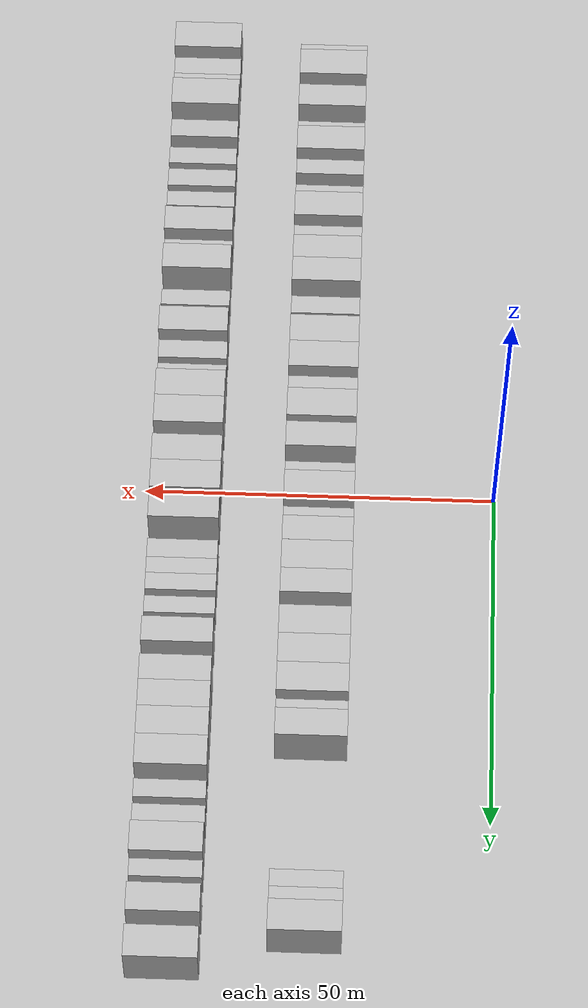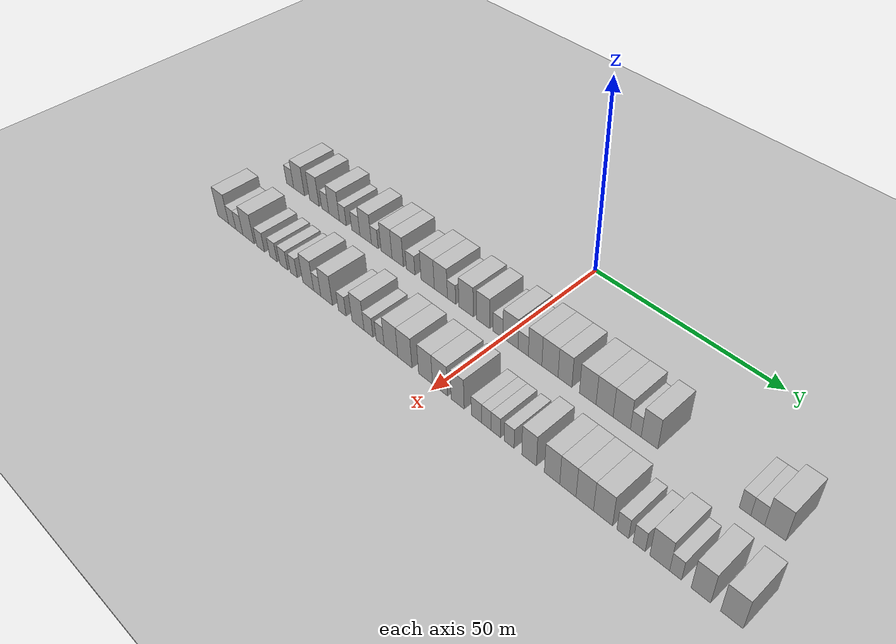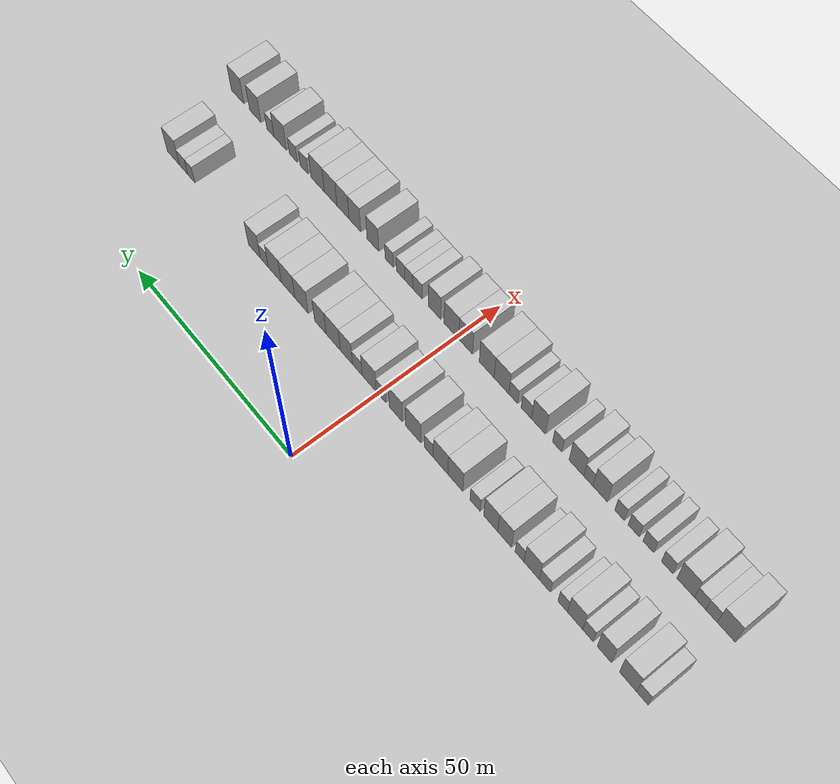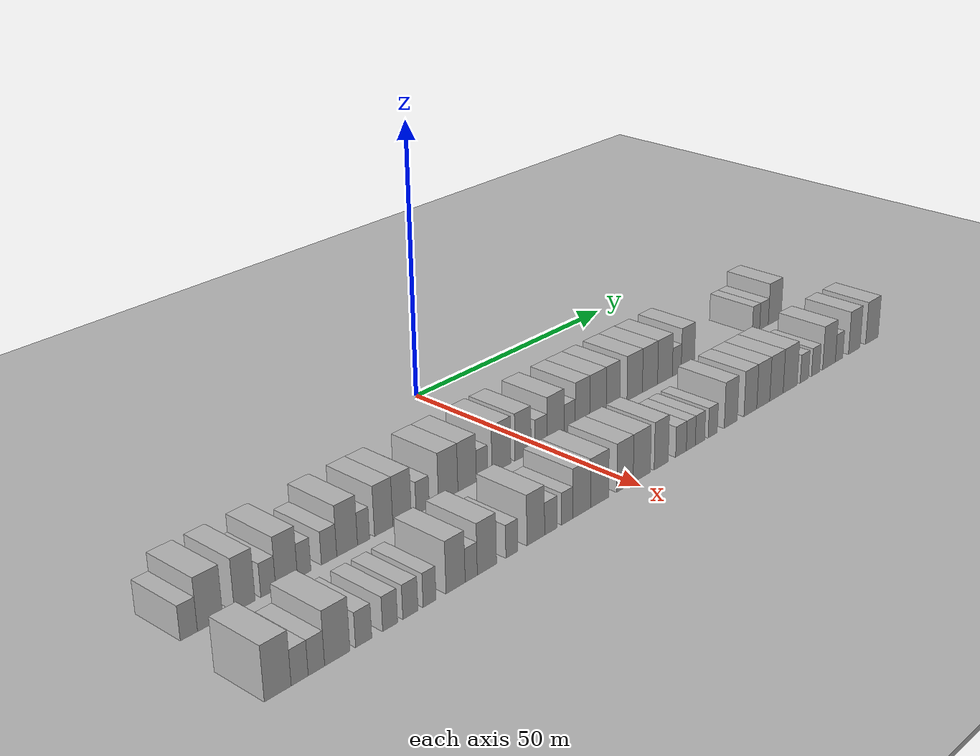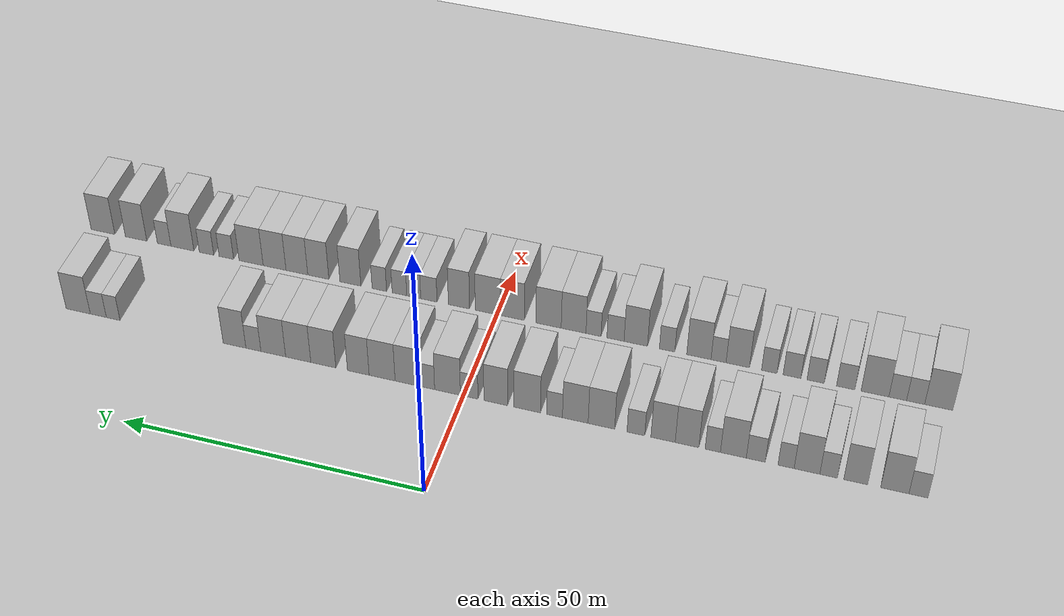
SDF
<sdf version="1.6">
 <world name="default">
  <include><name>ground_plane_1</name><uri>model://HANNAS_ground_plane</uri></include>
  <include>
   <name>ground_plane_2</name>
   <uri>model://HANNAS_ground_plane</uri>
   <pose>100 0 0  0 0 0</pose>
  </include>
  <model name="building_36">
   <static>1</static>
   <pose>25.0000 -72.7399 0 0.000000 0.000000 0.000000</pose>
   <link name="link">
    <pose>0 0 3.00 0 0 0</pose>
    <collision name="collision"><geometry><box><size>10.0000 2.8805 6.0000</size></box></geometry></collision>
    <visual name="visual">
     <cast_shadows>0</cast_shadows>
     <geometry><box><size>10.0000 2.8805 6.0000</size></box></geometry>
     <material>
      <script>
       <uri>model://HANNAS_wall/materials/scripts</uri>
       <uri>model://HANNAS_wall/materials/textures</uri>
       <name>vrc/HANNAS_wall</name>
      </script>
     </material>
    </visual>
   </link>
  </model>
  <model name="building_37">
   <static>1</static>
   <pose>25.0000 -69.1402 0 0.000000 0.000000 0.000000</pose>
   <link name="link">
    <pose>0 0 4.50 0 0 0</pose>
    <collision name="collision"><geometry><box><size>10.0000 4.3190 9.0000</size></box></geometry></collision>
    <visual name="visual">
     <cast_shadows>0</cast_shadows>
     <geometry><box><size>10.0000 4.3190 9.0000</size></box></geometry>
     <material>
      <script>
       <uri>model://HANNAS_wall/materials/scripts</uri>
       <uri>model://HANNAS_wall/materials/textures</uri>
       <name>vrc/HANNAS_wall</name>
      </script>
     </material>
    </visual>
   </link>
  </model>
  <model name="building_38">
   <static>1</static>
   <pose>25.0000 -63.1433 0 0.000000 0.000000 0.000000</pose>
   <link name="link">
    <pose>0 0 4.50 0 0 0</pose>
    <collision name="collision"><geometry><box><size>10.0000 3.6747 9.0000</size></box></geometry></collision>
    <visual name="visual">
     <cast_shadows>0</cast_shadows>
     <geometry><box><size>10.0000 3.6747 9.0000</size></box></geometry>
     <material>
      <script>
       <uri>model://HANNAS_wall/materials/scripts</uri>
       <uri>model://HANNAS_wall/materials/textures</uri>
       <name>vrc/HANNAS_wall</name>
      </script>
     </material>
    </visual>
   </link>
  </model>
  <model name="building_39">
   <static>1</static>
   <pose>25.0000 -58.9507 0 0.000000 0.000000 0.000000</pose>
   <link name="link">
    <pose>0 0 3.00 0 0 0</pose>
    <collision name="collision"><geometry><box><size>10.0000 2.7105 6.0000</size></box></geometry></collision>
    <visual name="visual">
     <cast_shadows>0</cast_shadows>
     <geometry><box><size>10.0000 2.7105 6.0000</size></box></geometry>
     <material>
      <script>
       <uri>model://HANNAS_wall/materials/scripts</uri>
       <uri>model://HANNAS_wall/materials/textures</uri>
       <name>vrc/HANNAS_wall</name>
      </script>
     </material>
    </visual>
   </link>
  </model>
  <model name="building_40">
   <static>1</static>
   <pose>25.0000 -55.5924 0 0.000000 0.000000 0.000000</pose>
   <link name="link">
    <pose>0 0 4.50 0 0 0</pose>
    <collision name="collision"><geometry><box><size>10.0000 4.0061 9.0000</size></box></geometry></collision>
    <visual name="visual">
     <cast_shadows>0</cast_shadows>
     <geometry><box><size>10.0000 4.0061 9.0000</size></box></geometry>
     <material>
      <script>
       <uri>model://HANNAS_wall/materials/scripts</uri>
       <uri>model://HANNAS_wall/materials/textures</uri>
       <name>vrc/HANNAS_wall</name>
      </script>
     </material>
    </visual>
   </link>
  </model>
  <model name="building_41">
   <static>1</static>
   <pose>25.0000 -52.3257 0 0.000000 0.000000 0.000000</pose>
   <link name="link">
    <pose>0 0 3.00 0 0 0</pose>
    <collision name="collision"><geometry><box><size>10.0000 2.5272 6.0000</size></box></geometry></collision>
    <visual name="visual">
     <cast_shadows>0</cast_shadows>
     <geometry><box><size>10.0000 2.5272 6.0000</size></box></geometry>
     <material>
      <script>
       <uri>model://HANNAS_wall/materials/scripts</uri>
       <uri>model://HANNAS_wall/materials/textures</uri>
       <name>vrc/HANNAS_wall</name>
      </script>
     </material>
    </visual>
   </link>
  </model>
  <model name="building_42">
   <static>1</static>
   <pose>25.0000 -47.5764 0 0.000000 0.000000 0.000000</pose>
   <link name="link">
    <pose>0 0 3.00 0 0 0</pose>
    <collision name="collision"><geometry><box><size>10.0000 2.9714 6.0000</size></box></geometry></collision>
    <visual name="visual">
     <cast_shadows>0</cast_shadows>
     <geometry><box><size>10.0000 2.9714 6.0000</size></box></geometry>
     <material>
      <script>
       <uri>model://HANNAS_wall/materials/scripts</uri>
       <uri>model://HANNAS_wall/materials/textures</uri>
       <name>vrc/HANNAS_wall</name>
      </script>
     </material>
    </visual>
   </link>
  </model>
  <model name="building_43">
   <static>1</static>
   <pose>25.0000 -44.0387 0 0.000000 0.000000 0.000000</pose>
   <link name="link">
    <pose>0 0 4.50 0 0 0</pose>
    <collision name="collision"><geometry><box><size>10.0000 4.1039 9.0000</size></box></geometry></collision>
    <visual name="visual">
     <cast_shadows>0</cast_shadows>
     <geometry><box><size>10.0000 4.1039 9.0000</size></box></geometry>
     <material>
      <script>
       <uri>model://HANNAS_wall/materials/scripts</uri>
       <uri>model://HANNAS_wall/materials/textures</uri>
       <name>vrc/HANNAS_wall</name>
      </script>
     </material>
    </visual>
   </link>
  </model>
  <model name="building_44">
   <static>1</static>
   <pose>25.0000 -40.7745 0 0.000000 0.000000 0.000000</pose>
   <link name="link">
    <pose>0 0 3.00 0 0 0</pose>
    <collision name="collision"><geometry><box><size>10.0000 2.4245 6.0000</size></box></geometry></collision>
    <visual name="visual">
     <cast_shadows>0</cast_shadows>
     <geometry><box><size>10.0000 2.4245 6.0000</size></box></geometry>
     <material>
      <script>
       <uri>model://HANNAS_wall/materials/scripts</uri>
       <uri>model://HANNAS_wall/materials/textures</uri>
       <name>vrc/HANNAS_wall</name>
      </script>
     </material>
    </visual>
   </link>
  </model>
  <model name="building_45">
   <static>1</static>
   <pose>25.0000 -36.6715 0 0.000000 0.000000 0.000000</pose>
   <link name="link">
    <pose>0 0 4.50 0 0 0</pose>
    <collision name="collision"><geometry><box><size>10.0000 3.7815 9.0000</size></box></geometry></collision>
    <visual name="visual">
     <cast_shadows>0</cast_shadows>
     <geometry><box><size>10.0000 3.7815 9.0000</size></box></geometry>
     <material>
      <script>
       <uri>model://HANNAS_wall/materials/scripts</uri>
       <uri>model://HANNAS_wall/materials/textures</uri>
       <name>vrc/HANNAS_wall</name>
      </script>
     </material>
    </visual>
   </link>
  </model>
  <model name="building_46">
   <static>1</static>
   <pose>25.0000 -32.8345 0 0.000000 0.000000 0.000000</pose>
   <link name="link">
    <pose>0 0 4.50 0 0 0</pose>
    <collision name="collision"><geometry><box><size>10.0000 3.8925 9.0000</size></box></geometry></collision>
    <visual name="visual">
     <cast_shadows>0</cast_shadows>
     <geometry><box><size>10.0000 3.8925 9.0000</size></box></geometry>
     <material>
      <script>
       <uri>model://HANNAS_wall/materials/scripts</uri>
       <uri>model://HANNAS_wall/materials/textures</uri>
       <name>vrc/HANNAS_wall</name>
      </script>
     </material>
    </visual>
   </link>
  </model>
  <model name="building_47">
   <static>1</static>
   <pose>25.0000 -28.4580 0 0.000000 0.000000 0.000000</pose>
   <link name="link">
    <pose>0 0 3.00 0 0 0</pose>
    <collision name="collision"><geometry><box><size>10.0000 2.8605 6.0000</size></box></geometry></collision>
    <visual name="visual">
     <cast_shadows>0</cast_shadows>
     <geometry><box><size>10.0000 2.8605 6.0000</size></box></geometry>
     <material>
      <script>
       <uri>model://HANNAS_wall/materials/scripts</uri>
       <uri>model://HANNAS_wall/materials/textures</uri>
       <name>vrc/HANNAS_wall</name>
      </script>
     </material>
    </visual>
   </link>
  </model>
  <model name="building_48">
   <static>1</static>
   <pose>25.0000 -22.8673 0 0.000000 0.000000 0.000000</pose>
   <link name="link">
    <pose>0 0 4.50 0 0 0</pose>
    <collision name="collision"><geometry><box><size>10.0000 4.3210 9.0000</size></box></geometry></collision>
    <visual name="visual">
     <cast_shadows>0</cast_shadows>
     <geometry><box><size>10.0000 4.3210 9.0000</size></box></geometry>
     <material>
      <script>
       <uri>model://HANNAS_wall/materials/scripts</uri>
       <uri>model://HANNAS_wall/materials/textures</uri>
       <name>vrc/HANNAS_wall</name>
      </script>
     </material>
    </visual>
   </link>
  </model>
  <model name="building_49">
   <static>1</static>
   <pose>25.0000 -18.6075 0 0.000000 0.000000 0.000000</pose>
   <link name="link">
    <pose>0 0 4.50 0 0 0</pose>
    <collision name="collision"><geometry><box><size>10.0000 4.1986 9.0000</size></box></geometry></collision>
    <visual name="visual">
     <cast_shadows>0</cast_shadows>
     <geometry><box><size>10.0000 4.1986 9.0000</size></box></geometry>
     <material>
      <script>
       <uri>model://HANNAS_wall/materials/scripts</uri>
       <uri>model://HANNAS_wall/materials/textures</uri>
       <name>vrc/HANNAS_wall</name>
      </script>
     </material>
    </visual>
   </link>
  </model>
  <model name="building_50">
   <static>1</static>
   <pose>25.0000 -15.2015 0 0.000000 0.000000 0.000000</pose>
   <link name="link">
    <pose>0 0 3.00 0 0 0</pose>
    <collision name="collision"><geometry><box><size>10.0000 2.6134 6.0000</size></box></geometry></collision>
    <visual name="visual">
     <cast_shadows>0</cast_shadows>
     <geometry><box><size>10.0000 2.6134 6.0000</size></box></geometry>
     <material>
      <script>
       <uri>model://HANNAS_wall/materials/scripts</uri>
       <uri>model://HANNAS_wall/materials/textures</uri>
       <name>vrc/HANNAS_wall</name>
      </script>
     </material>
    </visual>
   </link>
  </model>
  <model name="building_51">
   <static>1</static>
   <pose>25.0000 -10.6625 0 0.000000 0.000000 0.000000</pose>
   <link name="link">
    <pose>0 0 4.50 0 0 0</pose>
    <collision name="collision"><geometry><box><size>10.0000 4.4645 9.0000</size></box></geometry></collision>
    <visual name="visual">
     <cast_shadows>0</cast_shadows>
     <geometry><box><size>10.0000 4.4645 9.0000</size></box></geometry>
     <material>
      <script>
       <uri>model://HANNAS_wall/materials/scripts</uri>
       <uri>model://HANNAS_wall/materials/textures</uri>
       <name>vrc/HANNAS_wall</name>
      </script>
     </material>
    </visual>
   </link>
  </model>
  <model name="building_52">
   <static>1</static>
   <pose>25.0000 -5.4707 0 0.000000 0.000000 0.000000</pose>
   <link name="link">
    <pose>0 0 4.50 0 0 0</pose>
    <collision name="collision"><geometry><box><size>10.0000 3.9190 9.0000</size></box></geometry></collision>
    <visual name="visual">
     <cast_shadows>0</cast_shadows>
     <geometry><box><size>10.0000 3.9190 9.0000</size></box></geometry>
     <material>
      <script>
       <uri>model://HANNAS_wall/materials/scripts</uri>
       <uri>model://HANNAS_wall/materials/textures</uri>
       <name>vrc/HANNAS_wall</name>
      </script>
     </material>
    </visual>
   </link>
  </model>
  <model name="building_53">
   <static>1</static>
   <pose>25.0000 -1.0420 0 0.000000 0.000000 0.000000</pose>
   <link name="link">
    <pose>0 0 3.00 0 0 0</pose>
    <collision name="collision"><geometry><box><size>10.0000 2.9385 6.0000</size></box></geometry></collision>
    <visual name="visual">
     <cast_shadows>0</cast_shadows>
     <geometry><box><size>10.0000 2.9385 6.0000</size></box></geometry>
     <material>
      <script>
       <uri>model://HANNAS_wall/materials/scripts</uri>
       <uri>model://HANNAS_wall/materials/textures</uri>
       <name>vrc/HANNAS_wall</name>
      </script>
     </material>
    </visual>
   </link>
  </model>
  <model name="building_54">
   <static>1</static>
   <pose>25.0000 2.5894 0 0.000000 0.000000 0.000000</pose>
   <link name="link">
    <pose>0 0 4.50 0 0 0</pose>
    <collision name="collision"><geometry><box><size>10.0000 4.3243 9.0000</size></box></geometry></collision>
    <visual name="visual">
     <cast_shadows>0</cast_shadows>
     <geometry><box><size>10.0000 4.3243 9.0000</size></box></geometry>
     <material>
      <script>
       <uri>model://HANNAS_wall/materials/scripts</uri>
       <uri>model://HANNAS_wall/materials/textures</uri>
       <name>vrc/HANNAS_wall</name>
      </script>
     </material>
    </visual>
   </link>
  </model>
  <model name="building_55">
   <static>1</static>
   <pose>25.0000 6.2147 0 0.000000 0.000000 0.000000</pose>
   <link name="link">
    <pose>0 0 3.00 0 0 0</pose>
    <collision name="collision"><geometry><box><size>10.0000 2.9261 6.0000</size></box></geometry></collision>
    <visual name="visual">
     <cast_shadows>0</cast_shadows>
     <geometry><box><size>10.0000 2.9261 6.0000</size></box></geometry>
     <material>
      <script>
       <uri>model://HANNAS_wall/materials/scripts</uri>
       <uri>model://HANNAS_wall/materials/textures</uri>
       <name>vrc/HANNAS_wall</name>
      </script>
     </material>
    </visual>
   </link>
  </model>
  <model name="building_56">
   <static>1</static>
   <pose>25.0000 9.5672 0 0.000000 0.000000 0.000000</pose>
   <link name="link">
    <pose>0 0 4.50 0 0 0</pose>
    <collision name="collision"><geometry><box><size>10.0000 3.7789 9.0000</size></box></geometry></collision>
    <visual name="visual">
     <cast_shadows>0</cast_shadows>
     <geometry><box><size>10.0000 3.7789 9.0000</size></box></geometry>
     <material>
      <script>
       <uri>model://HANNAS_wall/materials/scripts</uri>
       <uri>model://HANNAS_wall/materials/textures</uri>
       <name>vrc/HANNAS_wall</name>
      </script>
     </material>
    </visual>
   </link>
  </model>
  <model name="building_57">
   <static>1</static>
   <pose>25.0000 13.6727 0 0.000000 0.000000 0.000000</pose>
   <link name="link">
    <pose>0 0 4.50 0 0 0</pose>
    <collision name="collision"><geometry><box><size>10.0000 4.4319 9.0000</size></box></geometry></collision>
    <visual name="visual">
     <cast_shadows>0</cast_shadows>
     <geometry><box><size>10.0000 4.4319 9.0000</size></box></geometry>
     <material>
      <script>
       <uri>model://HANNAS_wall/materials/scripts</uri>
       <uri>model://HANNAS_wall/materials/textures</uri>
       <name>vrc/HANNAS_wall</name>
      </script>
     </material>
    </visual>
   </link>
  </model>
  <model name="building_58">
   <static>1</static>
   <pose>25.0000 17.7466 0 0.000000 0.000000 0.000000</pose>
   <link name="link">
    <pose>0 0 4.50 0 0 0</pose>
    <collision name="collision"><geometry><box><size>10.0000 3.7159 9.0000</size></box></geometry></collision>
    <visual name="visual">
     <cast_shadows>0</cast_shadows>
     <geometry><box><size>10.0000 3.7159 9.0000</size></box></geometry>
     <material>
      <script>
       <uri>model://HANNAS_wall/materials/scripts</uri>
       <uri>model://HANNAS_wall/materials/textures</uri>
       <name>vrc/HANNAS_wall</name>
      </script>
     </material>
    </visual>
   </link>
  </model>
  <model name="building_59">
   <static>1</static>
   <pose>25.0000 23.7717 0 0.000000 0.000000 0.000000</pose>
   <link name="link">
    <pose>0 0 4.50 0 0 0</pose>
    <collision name="collision"><geometry><box><size>10.0000 4.3344 9.0000</size></box></geometry></collision>
    <visual name="visual">
     <cast_shadows>0</cast_shadows>
     <geometry><box><size>10.0000 4.3344 9.0000</size></box></geometry>
     <material>
      <script>
       <uri>model://HANNAS_wall/materials/scripts</uri>
       <uri>model://HANNAS_wall/materials/textures</uri>
       <name>vrc/HANNAS_wall</name>
      </script>
     </material>
    </visual>
   </link>
  </model>
  <model name="building_60">
   <static>1</static>
   <pose>25.0000 28.1252 0 0.000000 0.000000 0.000000</pose>
   <link name="link">
    <pose>0 0 4.50 0 0 0</pose>
    <collision name="collision"><geometry><box><size>10.0000 4.3726 9.0000</size></box></geometry></collision>
    <visual name="visual">
     <cast_shadows>0</cast_shadows>
     <geometry><box><size>10.0000 4.3726 9.0000</size></box></geometry>
     <material>
      <script>
       <uri>model://HANNAS_wall/materials/scripts</uri>
       <uri>model://HANNAS_wall/materials/textures</uri>
       <name>vrc/HANNAS_wall</name>
      </script>
     </material>
    </visual>
   </link>
  </model>
  <model name="building_61">
   <static>1</static>
   <pose>25.0000 32.4729 0 0.000000 0.000000 0.000000</pose>
   <link name="link">
    <pose>0 0 4.50 0 0 0</pose>
    <collision name="collision"><geometry><box><size>10.0000 4.3227 9.0000</size></box></geometry></collision>
    <visual name="visual">
     <cast_shadows>0</cast_shadows>
     <geometry><box><size>10.0000 4.3227 9.0000</size></box></geometry>
     <material>
      <script>
       <uri>model://HANNAS_wall/materials/scripts</uri>
       <uri>model://HANNAS_wall/materials/textures</uri>
       <name>vrc/HANNAS_wall</name>
      </script>
     </material>
    </visual>
   </link>
  </model>
  <model name="building_62">
   <static>1</static>
   <pose>25.0000 35.9554 0 0.000000 0.000000 0.000000</pose>
   <link name="link">
    <pose>0 0 3.00 0 0 0</pose>
    <collision name="collision"><geometry><box><size>10.0000 2.6424 6.0000</size></box></geometry></collision>
    <visual name="visual">
     <cast_shadows>0</cast_shadows>
     <geometry><box><size>10.0000 2.6424 6.0000</size></box></geometry>
     <material>
      <script>
       <uri>model://HANNAS_wall/materials/scripts</uri>
       <uri>model://HANNAS_wall/materials/textures</uri>
       <name>vrc/HANNAS_wall</name>
      </script>
     </material>
    </visual>
   </link>
  </model>
  <model name="building_63">
   <static>1</static>
   <pose>25.0000 39.2814 0 0.000000 0.000000 0.000000</pose>
   <link name="link">
    <pose>0 0 4.50 0 0 0</pose>
    <collision name="collision"><geometry><box><size>10.0000 4.0095 9.0000</size></box></geometry></collision>
    <visual name="visual">
     <cast_shadows>0</cast_shadows>
     <geometry><box><size>10.0000 4.0095 9.0000</size></box></geometry>
     <material>
      <script>
       <uri>model://HANNAS_wall/materials/scripts</uri>
       <uri>model://HANNAS_wall/materials/textures</uri>
       <name>vrc/HANNAS_wall</name>
      </script>
     </material>
    </visual>
   </link>
  </model>
  <model name="building_64">
   <static>1</static>
   <pose>25.0000 60.9998 0 0.000000 0.000000 0.000000</pose>
   <link name="link">
    <pose>0 0 3.00 0 0 0</pose>
    <collision name="collision"><geometry><box><size>10.0000 2.4758 6.0000</size></box></geometry></collision>
    <visual name="visual">
     <cast_shadows>0</cast_shadows>
     <geometry><box><size>10.0000 2.4758 6.0000</size></box></geometry>
     <material>
      <script>
       <uri>model://HANNAS_wall/materials/scripts</uri>
       <uri>model://HANNAS_wall/materials/textures</uri>
       <name>vrc/HANNAS_wall</name>
      </script>
     </material>
    </visual>
   </link>
  </model>
  <model name="building_65">
   <static>1</static>
   <pose>25.0000 63.6991 0 0.000000 0.000000 0.000000</pose>
   <link name="link">
    <pose>0 0 3.00 0 0 0</pose>
    <collision name="collision"><geometry><box><size>10.0000 2.9228 6.0000</size></box></geometry></collision>
    <visual name="visual">
     <cast_shadows>0</cast_shadows>
     <geometry><box><size>10.0000 2.9228 6.0000</size></box></geometry>
     <material>
      <script>
       <uri>model://HANNAS_wall/materials/scripts</uri>
       <uri>model://HANNAS_wall/materials/textures</uri>
       <name>vrc/HANNAS_wall</name>
      </script>
     </material>
    </visual>
   </link>
  </model>
  <model name="building_66">
   <static>1</static>
   <pose>25.0000 67.3624 0 0.000000 0.000000 0.000000</pose>
   <link name="link">
    <pose>0 0 4.50 0 0 0</pose>
    <collision name="collision"><geometry><box><size>10.0000 4.4037 9.0000</size></box></geometry></collision>
    <visual name="visual">
     <cast_shadows>0</cast_shadows>
     <geometry><box><size>10.0000 4.4037 9.0000</size></box></geometry>
     <material>
      <script>
       <uri>model://HANNAS_wall/materials/scripts</uri>
       <uri>model://HANNAS_wall/materials/textures</uri>
       <name>vrc/HANNAS_wall</name>
      </script>
     </material>
    </visual>
   </link>
  </model>
  <model name="building_132">
   <static>1</static>
   <pose>44.0000 -73.4076 0 0.000000 0.000000 0.000000</pose>
   <link name="link">
    <pose>0 0 4.50 0 0 0</pose>
    <collision name="collision"><geometry><box><size>10.0000 4.4582 9.0000</size></box></geometry></collision>
    <visual name="visual">
     <cast_shadows>0</cast_shadows>
     <geometry><box><size>10.0000 4.4582 9.0000</size></box></geometry>
     <material>
      <script>
       <uri>model://HANNAS_wall/materials/scripts</uri>
       <uri>model://HANNAS_wall/materials/textures</uri>
       <name>vrc/HANNAS_wall</name>
      </script>
     </material>
    </visual>
   </link>
  </model>
  <model name="building_133">
   <static>1</static>
   <pose>44.0000 -69.7399 0 0.000000 0.000000 0.000000</pose>
   <link name="link">
    <pose>0 0 3.00 0 0 0</pose>
    <collision name="collision"><geometry><box><size>10.0000 2.8771 6.0000</size></box></geometry></collision>
    <visual name="visual">
     <cast_shadows>0</cast_shadows>
     <geometry><box><size>10.0000 2.8771 6.0000</size></box></geometry>
     <material>
      <script>
       <uri>model://HANNAS_wall/materials/scripts</uri>
       <uri>model://HANNAS_wall/materials/textures</uri>
       <name>vrc/HANNAS_wall</name>
      </script>
     </material>
    </visual>
   </link>
  </model>
  <model name="building_134">
   <static>1</static>
   <pose>44.0000 -66.8878 0 0.000000 0.000000 0.000000</pose>
   <link name="link">
    <pose>0 0 3.00 0 0 0</pose>
    <collision name="collision"><geometry><box><size>10.0000 2.8272 6.0000</size></box></geometry></collision>
    <visual name="visual">
     <cast_shadows>0</cast_shadows>
     <geometry><box><size>10.0000 2.8272 6.0000</size></box></geometry>
     <material>
      <script>
       <uri>model://HANNAS_wall/materials/scripts</uri>
       <uri>model://HANNAS_wall/materials/textures</uri>
       <name>vrc/HANNAS_wall</name>
      </script>
     </material>
    </visual>
   </link>
  </model>
  <model name="building_135">
   <static>1</static>
   <pose>44.0000 -63.2411 0 0.000000 0.000000 0.000000</pose>
   <link name="link">
    <pose>0 0 4.50 0 0 0</pose>
    <collision name="collision"><geometry><box><size>10.0000 4.4661 9.0000</size></box></geometry></collision>
    <visual name="visual">
     <cast_shadows>0</cast_shadows>
     <geometry><box><size>10.0000 4.4661 9.0000</size></box></geometry>
     <material>
      <script>
       <uri>model://HANNAS_wall/materials/scripts</uri>
       <uri>model://HANNAS_wall/materials/textures</uri>
       <name>vrc/HANNAS_wall</name>
      </script>
     </material>
    </visual>
   </link>
  </model>
  <model name="building_136">
   <static>1</static>
   <pose>44.0000 -58.5272 0 0.000000 0.000000 0.000000</pose>
   <link name="link">
    <pose>0 0 3.00 0 0 0</pose>
    <collision name="collision"><geometry><box><size>10.0000 2.9618 6.0000</size></box></geometry></collision>
    <visual name="visual">
     <cast_shadows>0</cast_shadows>
     <geometry><box><size>10.0000 2.9618 6.0000</size></box></geometry>
     <material>
      <script>
       <uri>model://HANNAS_wall/materials/scripts</uri>
       <uri>model://HANNAS_wall/materials/textures</uri>
       <name>vrc/HANNAS_wall</name>
      </script>
     </material>
    </visual>
   </link>
  </model>
  <model name="building_137">
   <static>1</static>
   <pose>44.0000 -53.6484 0 0.000000 0.000000 0.000000</pose>
   <link name="link">
    <pose>0 0 3.00 0 0 0</pose>
    <collision name="collision"><geometry><box><size>10.0000 2.7958 6.0000</size></box></geometry></collision>
    <visual name="visual">
     <cast_shadows>0</cast_shadows>
     <geometry><box><size>10.0000 2.7958 6.0000</size></box></geometry>
     <material>
      <script>
       <uri>model://HANNAS_wall/materials/scripts</uri>
       <uri>model://HANNAS_wall/materials/textures</uri>
       <name>vrc/HANNAS_wall</name>
      </script>
     </material>
    </visual>
   </link>
  </model>
  <model name="building_138">
   <static>1</static>
   <pose>44.0000 -49.7994 0 0.000000 0.000000 0.000000</pose>
   <link name="link">
    <pose>0 0 3.00 0 0 0</pose>
    <collision name="collision"><geometry><box><size>10.0000 2.9022 6.0000</size></box></geometry></collision>
    <visual name="visual">
     <cast_shadows>0</cast_shadows>
     <geometry><box><size>10.0000 2.9022 6.0000</size></box></geometry>
     <material>
      <script>
       <uri>model://HANNAS_wall/materials/scripts</uri>
       <uri>model://HANNAS_wall/materials/textures</uri>
       <name>vrc/HANNAS_wall</name>
      </script>
     </material>
    </visual>
   </link>
  </model>
  <model name="building_139">
   <static>1</static>
   <pose>44.0000 -46.0806 0 0.000000 0.000000 0.000000</pose>
   <link name="link">
    <pose>0 0 3.00 0 0 0</pose>
    <collision name="collision"><geometry><box><size>10.0000 2.5355 6.0000</size></box></geometry></collision>
    <visual name="visual">
     <cast_shadows>0</cast_shadows>
     <geometry><box><size>10.0000 2.5355 6.0000</size></box></geometry>
     <material>
      <script>
       <uri>model://HANNAS_wall/materials/scripts</uri>
       <uri>model://HANNAS_wall/materials/textures</uri>
       <name>vrc/HANNAS_wall</name>
      </script>
     </material>
    </visual>
   </link>
  </model>
  <model name="building_140">
   <static>1</static>
   <pose>44.0000 -40.8798 0 0.000000 0.000000 0.000000</pose>
   <link name="link">
    <pose>0 0 4.50 0 0 0</pose>
    <collision name="collision"><geometry><box><size>10.0000 3.8660 9.0000</size></box></geometry></collision>
    <visual name="visual">
     <cast_shadows>0</cast_shadows>
     <geometry><box><size>10.0000 3.8660 9.0000</size></box></geometry>
     <material>
      <script>
       <uri>model://HANNAS_wall/materials/scripts</uri>
       <uri>model://HANNAS_wall/materials/textures</uri>
       <name>vrc/HANNAS_wall</name>
      </script>
     </material>
    </visual>
   </link>
  </model>
  <model name="building_141">
   <static>1</static>
   <pose>44.0000 -37.6966 0 0.000000 0.000000 0.000000</pose>
   <link name="link">
    <pose>0 0 3.00 0 0 0</pose>
    <collision name="collision"><geometry><box><size>10.0000 2.5003 6.0000</size></box></geometry></collision>
    <visual name="visual">
     <cast_shadows>0</cast_shadows>
     <geometry><box><size>10.0000 2.5003 6.0000</size></box></geometry>
     <material>
      <script>
       <uri>model://HANNAS_wall/materials/scripts</uri>
       <uri>model://HANNAS_wall/materials/textures</uri>
       <name>vrc/HANNAS_wall</name>
      </script>
     </material>
    </visual>
   </link>
  </model>
  <model name="building_142">
   <static>1</static>
   <pose>44.0000 -34.4237 0 0.000000 0.000000 0.000000</pose>
   <link name="link">
    <pose>0 0 4.50 0 0 0</pose>
    <collision name="collision"><geometry><box><size>10.0000 4.0455 9.0000</size></box></geometry></collision>
    <visual name="visual">
     <cast_shadows>0</cast_shadows>
     <geometry><box><size>10.0000 4.0455 9.0000</size></box></geometry>
     <material>
      <script>
       <uri>model://HANNAS_wall/materials/scripts</uri>
       <uri>model://HANNAS_wall/materials/textures</uri>
       <name>vrc/HANNAS_wall</name>
      </script>
     </material>
    </visual>
   </link>
  </model>
  <model name="building_143">
   <static>1</static>
   <pose>44.0000 -29.1098 0 0.000000 0.000000 0.000000</pose>
   <link name="link">
    <pose>0 0 3.00 0 0 0</pose>
    <collision name="collision"><geometry><box><size>10.0000 2.5823 6.0000</size></box></geometry></collision>
    <visual name="visual">
     <cast_shadows>0</cast_shadows>
     <geometry><box><size>10.0000 2.5823 6.0000</size></box></geometry>
     <material>
      <script>
       <uri>model://HANNAS_wall/materials/scripts</uri>
       <uri>model://HANNAS_wall/materials/textures</uri>
       <name>vrc/HANNAS_wall</name>
      </script>
     </material>
    </visual>
   </link>
  </model>
  <model name="building_144">
   <static>1</static>
   <pose>44.0000 -23.8371 0 0.000000 0.000000 0.000000</pose>
   <link name="link">
    <pose>0 0 4.50 0 0 0</pose>
    <collision name="collision"><geometry><box><size>10.0000 3.9630 9.0000</size></box></geometry></collision>
    <visual name="visual">
     <cast_shadows>0</cast_shadows>
     <geometry><box><size>10.0000 3.9630 9.0000</size></box></geometry>
     <material>
      <script>
       <uri>model://HANNAS_wall/materials/scripts</uri>
       <uri>model://HANNAS_wall/materials/textures</uri>
       <name>vrc/HANNAS_wall</name>
      </script>
     </material>
    </visual>
   </link>
  </model>
  <model name="building_145">
   <static>1</static>
   <pose>44.0000 -20.4010 0 0.000000 0.000000 0.000000</pose>
   <link name="link">
    <pose>0 0 3.00 0 0 0</pose>
    <collision name="collision"><geometry><box><size>10.0000 2.9094 6.0000</size></box></geometry></collision>
    <visual name="visual">
     <cast_shadows>0</cast_shadows>
     <geometry><box><size>10.0000 2.9094 6.0000</size></box></geometry>
     <material>
      <script>
       <uri>model://HANNAS_wall/materials/scripts</uri>
       <uri>model://HANNAS_wall/materials/textures</uri>
       <name>vrc/HANNAS_wall</name>
      </script>
     </material>
    </visual>
   </link>
  </model>
  <model name="building_146">
   <static>1</static>
   <pose>44.0000 -16.6625 0 0.000000 0.000000 0.000000</pose>
   <link name="link">
    <pose>0 0 3.00 0 0 0</pose>
    <collision name="collision"><geometry><box><size>10.0000 2.5676 6.0000</size></box></geometry></collision>
    <visual name="visual">
     <cast_shadows>0</cast_shadows>
     <geometry><box><size>10.0000 2.5676 6.0000</size></box></geometry>
     <material>
      <script>
       <uri>model://HANNAS_wall/materials/scripts</uri>
       <uri>model://HANNAS_wall/materials/textures</uri>
       <name>vrc/HANNAS_wall</name>
      </script>
     </material>
    </visual>
   </link>
  </model>
  <model name="building_147">
   <static>1</static>
   <pose>44.0000 -13.2545 0 0.000000 0.000000 0.000000</pose>
   <link name="link">
    <pose>0 0 4.50 0 0 0</pose>
    <collision name="collision"><geometry><box><size>10.0000 4.2485 9.0000</size></box></geometry></collision>
    <visual name="visual">
     <cast_shadows>0</cast_shadows>
     <geometry><box><size>10.0000 4.2485 9.0000</size></box></geometry>
     <material>
      <script>
       <uri>model://HANNAS_wall/materials/scripts</uri>
       <uri>model://HANNAS_wall/materials/textures</uri>
       <name>vrc/HANNAS_wall</name>
      </script>
     </material>
    </visual>
   </link>
  </model>
  <model name="building_148">
   <static>1</static>
   <pose>44.0000 -8.9471 0 0.000000 0.000000 0.000000</pose>
   <link name="link">
    <pose>0 0 4.50 0 0 0</pose>
    <collision name="collision"><geometry><box><size>10.0000 4.3664 9.0000</size></box></geometry></collision>
    <visual name="visual">
     <cast_shadows>0</cast_shadows>
     <geometry><box><size>10.0000 4.3664 9.0000</size></box></geometry>
     <material>
      <script>
       <uri>model://HANNAS_wall/materials/scripts</uri>
       <uri>model://HANNAS_wall/materials/textures</uri>
       <name>vrc/HANNAS_wall</name>
      </script>
     </material>
    </visual>
   </link>
  </model>
  <model name="building_149">
   <static>1</static>
   <pose>44.0000 -2.7009 0 0.000000 0.000000 0.000000</pose>
   <link name="link">
    <pose>0 0 4.50 0 0 0</pose>
    <collision name="collision"><geometry><box><size>10.0000 4.1259 9.0000</size></box></geometry></collision>
    <visual name="visual">
     <cast_shadows>0</cast_shadows>
     <geometry><box><size>10.0000 4.1259 9.0000</size></box></geometry>
     <material>
      <script>
       <uri>model://HANNAS_wall/materials/scripts</uri>
       <uri>model://HANNAS_wall/materials/textures</uri>
       <name>vrc/HANNAS_wall</name>
      </script>
     </material>
    </visual>
   </link>
  </model>
  <model name="building_150">
   <static>1</static>
   <pose>44.0000 1.5637 0 0.000000 0.000000 0.000000</pose>
   <link name="link">
    <pose>0 0 4.50 0 0 0</pose>
    <collision name="collision"><geometry><box><size>10.0000 4.4035 9.0000</size></box></geometry></collision>
    <visual name="visual">
     <cast_shadows>0</cast_shadows>
     <geometry><box><size>10.0000 4.4035 9.0000</size></box></geometry>
     <material>
      <script>
       <uri>model://HANNAS_wall/materials/scripts</uri>
       <uri>model://HANNAS_wall/materials/textures</uri>
       <name>vrc/HANNAS_wall</name>
      </script>
     </material>
    </visual>
   </link>
  </model>
  <model name="building_151">
   <static>1</static>
   <pose>44.0000 6.6234 0 0.000000 0.000000 0.000000</pose>
   <link name="link">
    <pose>0 0 4.50 0 0 0</pose>
    <collision name="collision"><geometry><box><size>10.0000 3.7159 9.0000</size></box></geometry></collision>
    <visual name="visual">
     <cast_shadows>0</cast_shadows>
     <geometry><box><size>10.0000 3.7159 9.0000</size></box></geometry>
     <material>
      <script>
       <uri>model://HANNAS_wall/materials/scripts</uri>
       <uri>model://HANNAS_wall/materials/textures</uri>
       <name>vrc/HANNAS_wall</name>
      </script>
     </material>
    </visual>
   </link>
  </model>
  <model name="building_152">
   <static>1</static>
   <pose>44.0000 11.9278 0 0.000000 0.000000 0.000000</pose>
   <link name="link">
    <pose>0 0 3.00 0 0 0</pose>
    <collision name="collision"><geometry><box><size>10.0000 2.8928 6.0000</size></box></geometry></collision>
    <visual name="visual">
     <cast_shadows>0</cast_shadows>
     <geometry><box><size>10.0000 2.8928 6.0000</size></box></geometry>
     <material>
      <script>
       <uri>model://HANNAS_wall/materials/scripts</uri>
       <uri>model://HANNAS_wall/materials/textures</uri>
       <name>vrc/HANNAS_wall</name>
      </script>
     </material>
    </visual>
   </link>
  </model>
  <model name="building_153">
   <static>1</static>
   <pose>44.0000 14.6041 0 0.000000 0.000000 0.000000</pose>
   <link name="link">
    <pose>0 0 3.00 0 0 0</pose>
    <collision name="collision"><geometry><box><size>10.0000 2.4599 6.0000</size></box></geometry></collision>
    <visual name="visual">
     <cast_shadows>0</cast_shadows>
     <geometry><box><size>10.0000 2.4599 6.0000</size></box></geometry>
     <material>
      <script>
       <uri>model://HANNAS_wall/materials/scripts</uri>
       <uri>model://HANNAS_wall/materials/textures</uri>
       <name>vrc/HANNAS_wall</name>
      </script>
     </material>
    </visual>
   </link>
  </model>
  <model name="building_154">
   <static>1</static>
   <pose>44.0000 17.1319 0 0.000000 0.000000 0.000000</pose>
   <link name="link">
    <pose>0 0 3.00 0 0 0</pose>
    <collision name="collision"><geometry><box><size>10.0000 2.5956 6.0000</size></box></geometry></collision>
    <visual name="visual">
     <cast_shadows>0</cast_shadows>
     <geometry><box><size>10.0000 2.5956 6.0000</size></box></geometry>
     <material>
      <script>
       <uri>model://HANNAS_wall/materials/scripts</uri>
       <uri>model://HANNAS_wall/materials/textures</uri>
       <name>vrc/HANNAS_wall</name>
      </script>
     </material>
    </visual>
   </link>
  </model>
  <model name="building_155">
   <static>1</static>
   <pose>44.0000 20.7240 0 0.000000 0.000000 0.000000</pose>
   <link name="link">
    <pose>0 0 3.00 0 0 0</pose>
    <collision name="collision"><geometry><box><size>10.0000 2.5887 6.0000</size></box></geometry></collision>
    <visual name="visual">
     <cast_shadows>0</cast_shadows>
     <geometry><box><size>10.0000 2.5887 6.0000</size></box></geometry>
     <material>
      <script>
       <uri>model://HANNAS_wall/materials/scripts</uri>
       <uri>model://HANNAS_wall/materials/textures</uri>
       <name>vrc/HANNAS_wall</name>
      </script>
     </material>
    </visual>
   </link>
  </model>
  <model name="building_156">
   <static>1</static>
   <pose>44.0000 25.9043 0 0.000000 0.000000 0.000000</pose>
   <link name="link">
    <pose>0 0 4.50 0 0 0</pose>
    <collision name="collision"><geometry><box><size>10.0000 3.7720 9.0000</size></box></geometry></collision>
    <visual name="visual">
     <cast_shadows>0</cast_shadows>
     <geometry><box><size>10.0000 3.7720 9.0000</size></box></geometry>
     <material>
      <script>
       <uri>model://HANNAS_wall/materials/scripts</uri>
       <uri>model://HANNAS_wall/materials/textures</uri>
       <name>vrc/HANNAS_wall</name>
      </script>
     </material>
    </visual>
   </link>
  </model>
  <model name="building_157">
   <static>1</static>
   <pose>44.0000 31.7035 0 0.000000 0.000000 0.000000</pose>
   <link name="link">
    <pose>0 0 4.50 0 0 0</pose>
    <collision name="collision"><geometry><box><size>10.0000 3.8263 9.0000</size></box></geometry></collision>
    <visual name="visual">
     <cast_shadows>0</cast_shadows>
     <geometry><box><size>10.0000 3.8263 9.0000</size></box></geometry>
     <material>
      <script>
       <uri>model://HANNAS_wall/materials/scripts</uri>
       <uri>model://HANNAS_wall/materials/textures</uri>
       <name>vrc/HANNAS_wall</name>
      </script>
     </material>
    </visual>
   </link>
  </model>
  <model name="building_158">
   <static>1</static>
   <pose>44.0000 35.5994 0 0.000000 0.000000 0.000000</pose>
   <link name="link">
    <pose>0 0 4.50 0 0 0</pose>
    <collision name="collision"><geometry><box><size>10.0000 3.9656 9.0000</size></box></geometry></collision>
    <visual name="visual">
     <cast_shadows>0</cast_shadows>
     <geometry><box><size>10.0000 3.9656 9.0000</size></box></geometry>
     <material>
      <script>
       <uri>model://HANNAS_wall/materials/scripts</uri>
       <uri>model://HANNAS_wall/materials/textures</uri>
       <name>vrc/HANNAS_wall</name>
      </script>
     </material>
    </visual>
   </link>
  </model>
  <model name="building_159">
   <static>1</static>
   <pose>44.0000 39.6707 0 0.000000 0.000000 0.000000</pose>
   <link name="link">
    <pose>0 0 4.50 0 0 0</pose>
    <collision name="collision"><geometry><box><size>10.0000 4.1770 9.0000</size></box></geometry></collision>
    <visual name="visual">
     <cast_shadows>0</cast_shadows>
     <geometry><box><size>10.0000 4.1770 9.0000</size></box></geometry>
     <material>
      <script>
       <uri>model://HANNAS_wall/materials/scripts</uri>
       <uri>model://HANNAS_wall/materials/textures</uri>
       <name>vrc/HANNAS_wall</name>
      </script>
     </material>
    </visual>
   </link>
  </model>
  <model name="building_160">
   <static>1</static>
   <pose>44.0000 43.9792 0 0.000000 0.000000 0.000000</pose>
   <link name="link">
    <pose>0 0 4.50 0 0 0</pose>
    <collision name="collision"><geometry><box><size>10.0000 4.4400 9.0000</size></box></geometry></collision>
    <visual name="visual">
     <cast_shadows>0</cast_shadows>
     <geometry><box><size>10.0000 4.4400 9.0000</size></box></geometry>
     <material>
      <script>
       <uri>model://HANNAS_wall/materials/scripts</uri>
       <uri>model://HANNAS_wall/materials/textures</uri>
       <name>vrc/HANNAS_wall</name>
      </script>
     </material>
    </visual>
   </link>
  </model>
  <model name="building_161">
   <static>1</static>
   <pose>44.0000 48.5371 0 0.000000 0.000000 0.000000</pose>
   <link name="link">
    <pose>0 0 3.00 0 0 0</pose>
    <collision name="collision"><geometry><box><size>10.0000 2.6757 6.0000</size></box></geometry></collision>
    <visual name="visual">
     <cast_shadows>0</cast_shadows>
     <geometry><box><size>10.0000 2.6757 6.0000</size></box></geometry>
     <material>
      <script>
       <uri>model://HANNAS_wall/materials/scripts</uri>
       <uri>model://HANNAS_wall/materials/textures</uri>
       <name>vrc/HANNAS_wall</name>
      </script>
     </material>
    </visual>
   </link>
  </model>
  <model name="building_162">
   <static>1</static>
   <pose>44.0000 52.2168 0 0.000000 0.000000 0.000000</pose>
   <link name="link">
    <pose>0 0 3.00 0 0 0</pose>
    <collision name="collision"><geometry><box><size>10.0000 2.6838 6.0000</size></box></geometry></collision>
    <visual name="visual">
     <cast_shadows>0</cast_shadows>
     <geometry><box><size>10.0000 2.6838 6.0000</size></box></geometry>
     <material>
      <script>
       <uri>model://HANNAS_wall/materials/scripts</uri>
       <uri>model://HANNAS_wall/materials/textures</uri>
       <name>vrc/HANNAS_wall</name>
      </script>
     </material>
    </visual>
   </link>
  </model>
  <model name="building_163">
   <static>1</static>
   <pose>44.0000 56.7093 0 0.000000 0.000000 0.000000</pose>
   <link name="link">
    <pose>0 0 4.50 0 0 0</pose>
    <collision name="collision"><geometry><box><size>10.0000 4.3012 9.0000</size></box></geometry></collision>
    <visual name="visual">
     <cast_shadows>0</cast_shadows>
     <geometry><box><size>10.0000 4.3012 9.0000</size></box></geometry>
     <material>
      <script>
       <uri>model://HANNAS_wall/materials/scripts</uri>
       <uri>model://HANNAS_wall/materials/textures</uri>
       <name>vrc/HANNAS_wall</name>
      </script>
     </material>
    </visual>
   </link>
  </model>
  <model name="building_164">
   <static>1</static>
   <pose>44.0000 60.1287 0 0.000000 0.000000 0.000000</pose>
   <link name="link">
    <pose>0 0 3.00 0 0 0</pose>
    <collision name="collision"><geometry><box><size>10.0000 2.5376 6.0000</size></box></geometry></collision>
    <visual name="visual">
     <cast_shadows>0</cast_shadows>
     <geometry><box><size>10.0000 2.5376 6.0000</size></box></geometry>
     <material>
      <script>
       <uri>model://HANNAS_wall/materials/scripts</uri>
       <uri>model://HANNAS_wall/materials/textures</uri>
       <name>vrc/HANNAS_wall</name>
      </script>
     </material>
    </visual>
   </link>
  </model>
  <model name="building_165">
   <static>1</static>
   <pose>44.0000 65.4118 0 0.000000 0.000000 0.000000</pose>
   <link name="link">
    <pose>0 0 4.50 0 0 0</pose>
    <collision name="collision"><geometry><box><size>10.0000 4.0286 9.0000</size></box></geometry></collision>
    <visual name="visual">
     <cast_shadows>0</cast_shadows>
     <geometry><box><size>10.0000 4.0286 9.0000</size></box></geometry>
     <material>
      <script>
       <uri>model://HANNAS_wall/materials/scripts</uri>
       <uri>model://HANNAS_wall/materials/textures</uri>
       <name>vrc/HANNAS_wall</name>
      </script>
     </material>
    </visual>
   </link>
  </model>
  <model name="building_166">
   <static>1</static>
   <pose>44.0000 71.6757 0 0.000000 0.000000 0.000000</pose>
   <link name="link">
    <pose>0 0 4.50 0 0 0</pose>
    <collision name="collision"><geometry><box><size>10.0000 4.4992 9.0000</size></box></geometry></collision>
    <visual name="visual">
     <cast_shadows>0</cast_shadows>
     <geometry><box><size>10.0000 4.4992 9.0000</size></box></geometry>
     <material>
      <script>
       <uri>model://HANNAS_wall/materials/scripts</uri>
       <uri>model://HANNAS_wall/materials/textures</uri>
       <name>vrc/HANNAS_wall</name>
      </script>
     </material>
    </visual>
   </link>
  </model>
 </world>
</sdf>
